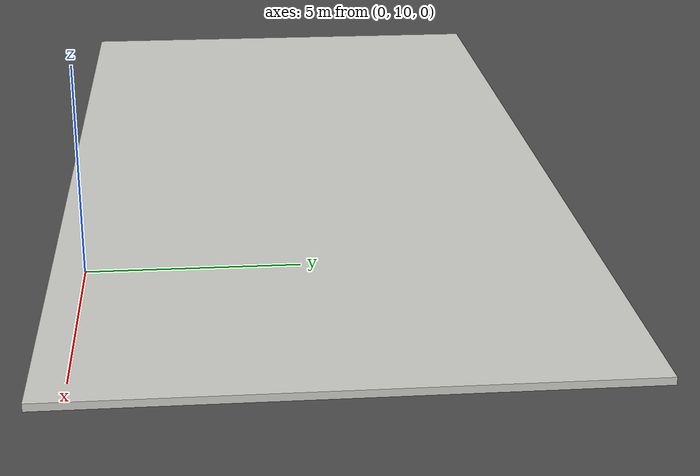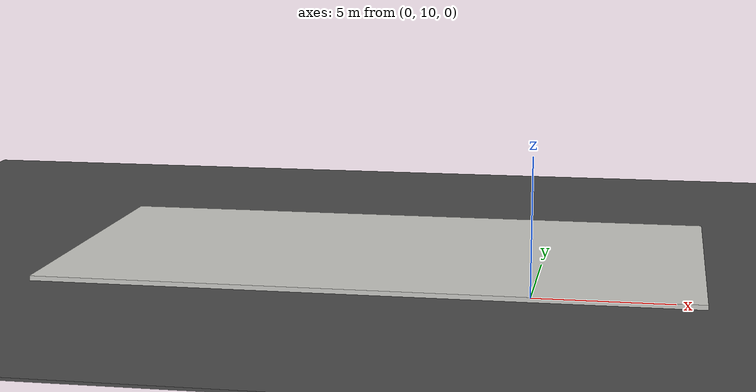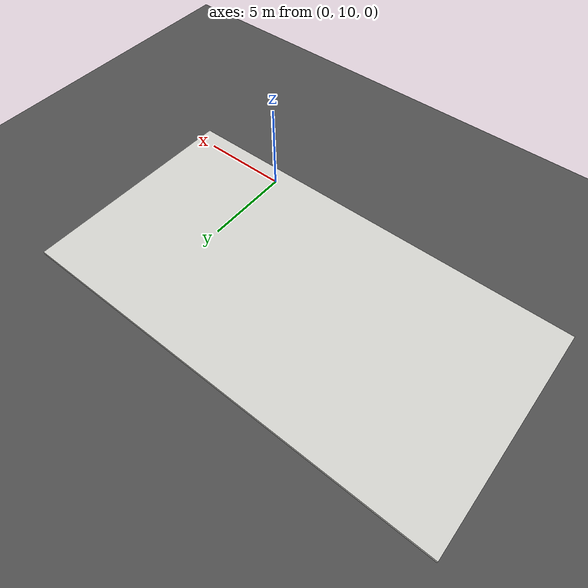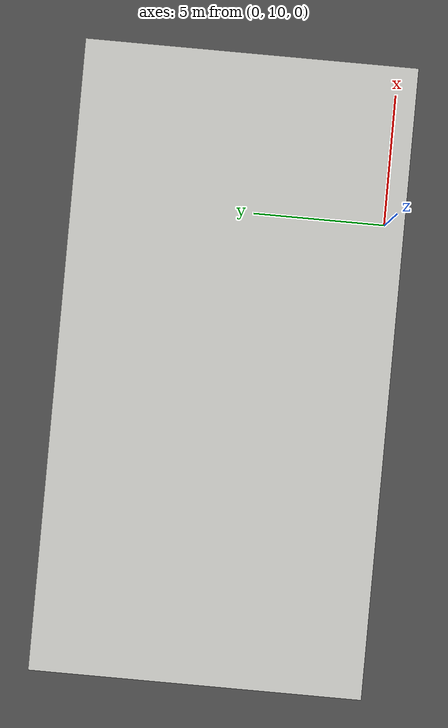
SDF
<sdf version="1.6">
 <world name="default">
  <model name="asphalt_plane">
   <static>1</static>
   <link name="link">
    <collision name="collision"><geometry><box><size>200 200 0.1</size></box></geometry></collision>
    <visual name="visual">
     <cast_shadows>0</cast_shadows>
     <geometry><box><size>200 200 0.1</size></box></geometry>
     <material>
      <script>
       <uri>model://asphalt_plane/materials/scripts</uri>
       <uri>model://asphalt_plane/materials/textures</uri>
       <name>vrc/asphalt</name>
      </script>
     </material>
    </visual>
   </link>
   <pose>0.263713 2.26378 0 0 -0 0</pose>
  </model>
  <model name="add_competition_building_with_stair">
   <link name="link_2_clone">
    <inertial>
     <mass>139.72</mass>
     <inertia><ixx>1892.14</ixx><ixy>0</ixy><ixz>0</ixz><iyy>6805.44</iyy><iyz>0</iyz><izz>8692.78</izz></inertia>
    </inertial>
    <pose>-8.83545 6.37789 0 0 -0 0</pose>
    <visual name="visual">
     <geometry><box><size>24.172 12.7398 0.453943</size></box></geometry>
     <material>
      <lighting>1</lighting>
      <script><uri>file://media/materials/scripts/gazebo.material</uri><name>Gazebo/CeilingTiled</name></script>
      <shader type="pixel"><normal_map>__default__</normal_map></shader>
      <ambient>1 1 1 1</ambient>
      <diffuse>1 1 1 1</diffuse>
      <specular>0.01 0.01 0.01 1</specular>
      <emissive>0 0 0 1</emissive>
     </material>
    </visual>
    <collision name="collision">
     <geometry><box><size>24.172 12.7398 0.453943</size></box></geometry>
     <surface>
      <friction>
       <ode><mu>1</mu><mu2>1</mu2><fdir1>0 0 0</fdir1><slip1>0</slip1><slip2>0</slip2></ode>
       <torsional>
        <coefficient>1</coefficient>
        <patch_radius>0</patch_radius>
        <surface_radius>0</surface_radius>
        <use_patch_radius>1</use_patch_radius>
        <ode><slip>0</slip></ode>
       </torsional>
      </friction>
      <bounce><restitution_coefficient>0</restitution_coefficient><threshold>1e+06</threshold></bounce>
      <contact>
       <collide_without_contact>0</collide_without_contact>
       <collide_without_contact_bitmask>1</collide_without_contact_bitmask>
       <collide_bitmask>1</collide_bitmask>
       <ode>
        <soft_cfm>0</soft_cfm>
        <soft_erp>0.2</soft_erp>
        <kp>1e+13</kp>
        <kd>1</kd>
        <max_vel>0.01</max_vel>
        <min_depth>0</min_depth>
       </ode>
       <bullet>
        <split_impulse>1</split_impulse>
        <split_impulse_penetration_threshold>-0.01</split_impulse_penetration_threshold>
        <soft_cfm>0</soft_cfm>
        <soft_erp>0.2</soft_erp>
        <kp>1e+13</kp>
        <kd>1</kd>
       </bullet>
      </contact>
     </surface>
    </collision>
   </link>
   <static>1</static>
   <pose>2.81593 9.24612 0 0 -0 0</pose>
  </model>
 </world>
</sdf>
